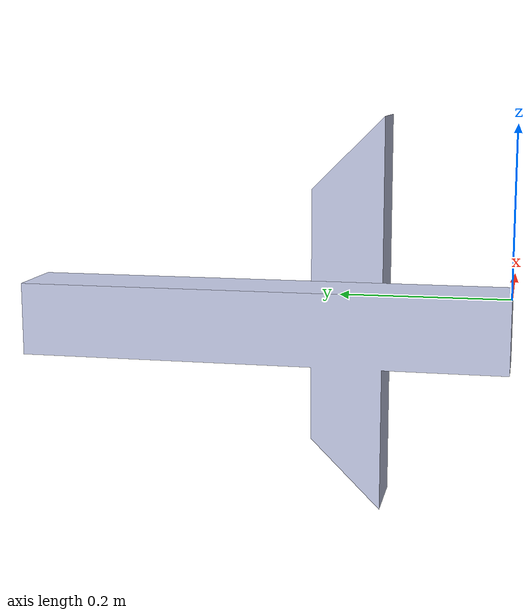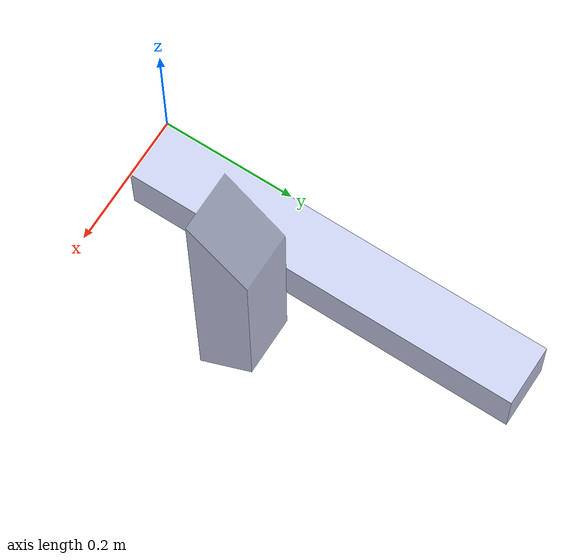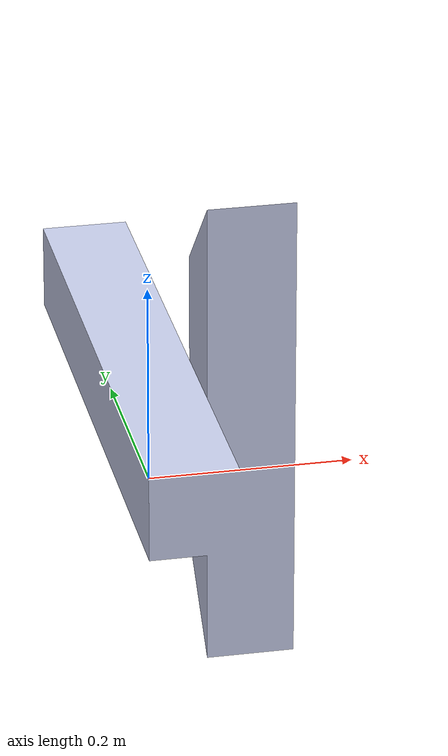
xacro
<?xml version="1.0"?>
<robot name="torso" xmlns:xacro="http://www.ros.org/wiki/xacro">

  <link
    name="torso">
    <inertial>
      <origin
        xyz="0.085549 0.045 0.22824"
        rpy="0 0 0" />
      <mass
        value="7.371" />
      <inertia
        ixx="0.142333363186813"
        ixy="-1.90598132246786E-17"
        ixz="-0.00793087912087912"
        iyy="0.110591962912088"
        iyz="-3.98955562535415E-18"
        izz="0.0712527997252747" />
    </inertial>
    <visual>
      <origin
        xyz="0 0 0"
        rpy="0 0 0" />
      <geometry>
        <mesh
          filename="package://rob9/urdf/meshes/torso_simple.STL" />
      </geometry>
      <material
        name="">
        <color
          rgba="0.79216 0.81961 0.93333 1" />
      </material>
    </visual>
    <collision>
      <origin
        xyz="0 0 0"
        rpy="0 0 0" />
      <geometry>
        <mesh
          filename="package://rob9/urdf/meshes/torso_simple.STL" />
      </geometry>
    </collision>
  </link>

  <link name="left_link"/>

   <joint name="left_platform" type="fixed">
     <parent link="torso"/>
     <child link="left_link"/>
     <origin xyz="0.137 0.215 0.1625" rpy="-${pi/4} 0 0"/>
   </joint>

   <link name="right_link"/>

    <joint name="right_platform" type="fixed">
      <parent link="torso"/>
      <child link="right_link"/>
      <origin xyz="0.137 0.2115 -0.2585" rpy="${pi+pi/4} 0 0"/>
    </joint>

    <link name="camera"/>

    <joint name="camera_platform" type="fixed">
      <parent link="torso"/>
      <child link="camera"/>
      <origin xyz="-0.005 0.516 -0.045" rpy="${pi/2} 0 -${2.0944}"/>
    </joint>

</robot>
